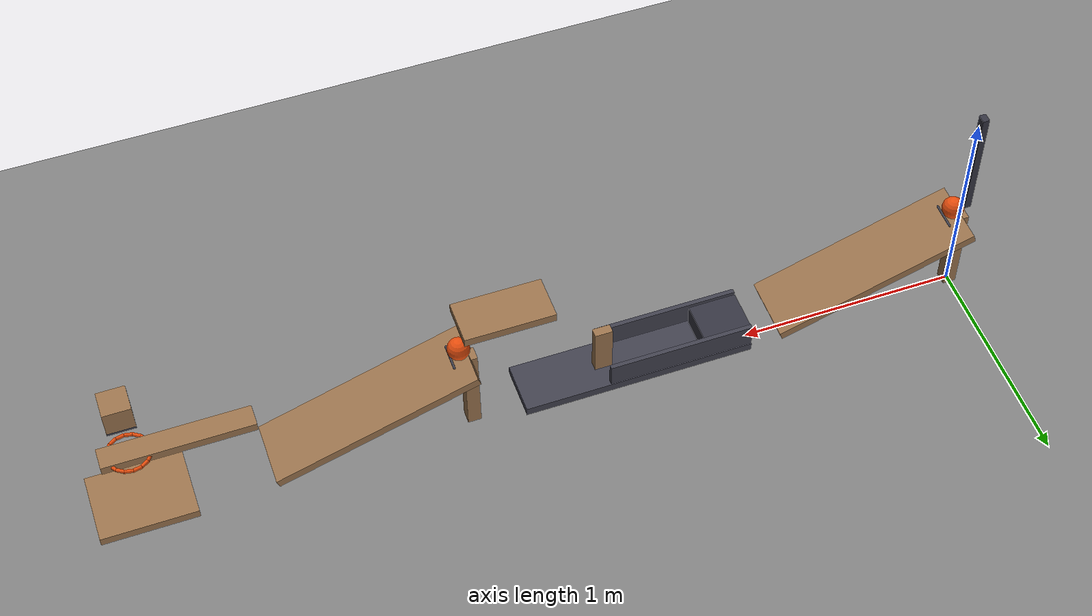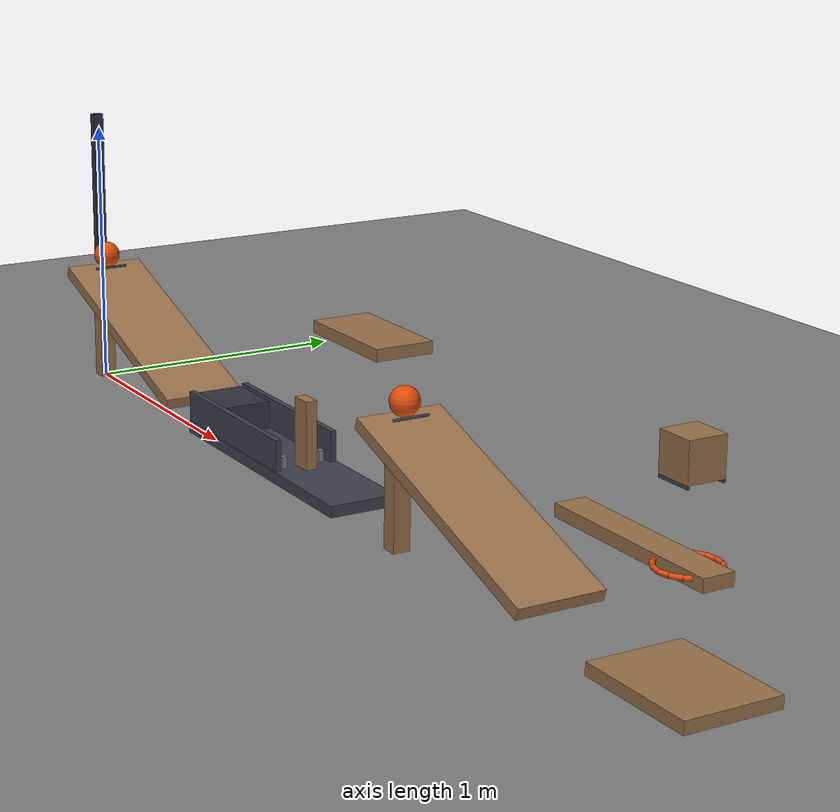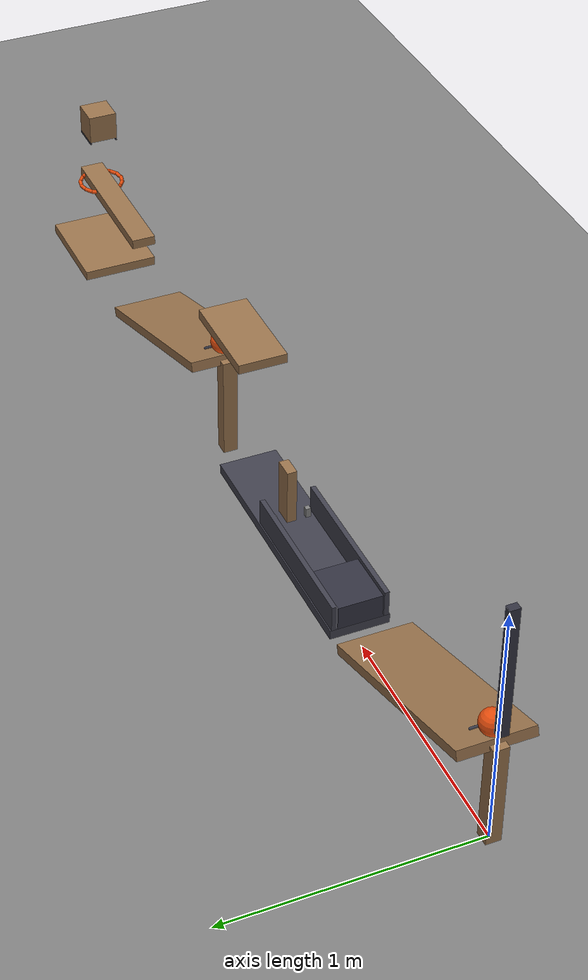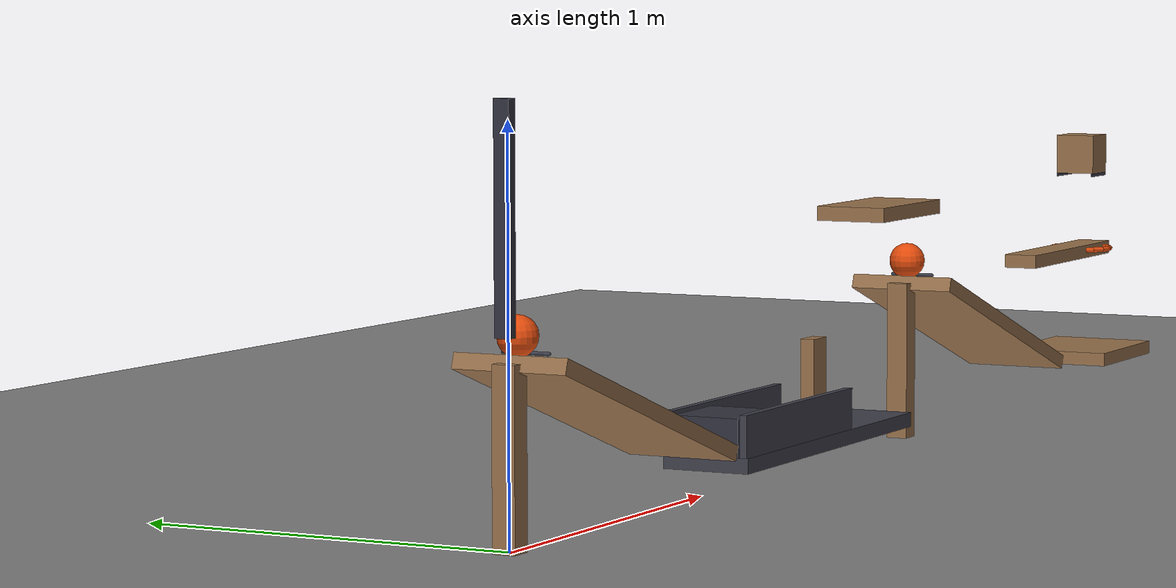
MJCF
<mujoco model="retained_ball_relay_revision">
  <compiler angle="radian"/>
  <option timestep="0.002"/>
  <worldbody>
    <geom name="floor" type="plane" size="8 8 0.1" friction="0.68 0.005 0.002"/>
    <body name="ramp1">
      <geom name="ramp1_deck" type="box" pos="0.449122 0 0.285735" size="0.475 0.15 0.02" euler="0 0.331612 0" friction="0.68 0.005 0.002" solref="0.01 1" rgba="0.6 0.45 0.3 1"/>
      <geom name="ramp1_leg" type="box" pos="0 0 0.22019" size="0.03 0.03 0.22019" friction="0.68 0.005 0.002" solref="0.01 1" rgba="0.6 0.45 0.3 1"/>
    </body>
    <body name="pendulum1" pos="-0.018298 0 1.05006">
      <joint name="pendulum_hinge" type="hinge" pos="0 0 0" axis="0 1 0" limited="true" range="-1.0472 0.959931" damping="0.04"/>
      <geom name="pendulum1" type="box" pos="0 0 -0.275" size="0.015 0.02 0.275" mass="0.4" friction="0.68 0.005 0.002" solref="0.01 1" rgba="0.2 0.2 0.25 1"/>
    </body>
    <body name="ball1" pos="0.0417001 0 0.500054">
      <freejoint/>
      <geom name="ball1" type="sphere" pos="0 0 0" size="0.05" mass="0.2" condim="6" friction="0.68 0.005 0.002" solref="0.01 1" rgba="0.9 0.3 0.05 1"/>
    </body>
    <body name="ball1 retainer">
      <geom name="ball1 retainer" type="capsule" size="0.005" fromto="0.0807001 0.06 0.457054 0.0807001 -0.06 0.457054" friction="0.68 0.005 0.002" solref="0.01 1" rgba="0.25 0.25 0.3 1"/>
    </body>
    <body name="cart track">
      <geom name="cart track" type="box" pos="1.54975 0 0.08" size="0.525 0.12 0.02" friction="0.68 0.005 0.002" solref="0.01 1" rgba="0.25 0.25 0.3 1"/>
    </body>
    <body name="cart left guide">
      <geom name="cart left guide" type="box" pos="1.35475 0.105 0.155" size="0.33 0.01 0.055" friction="0.68 0.005 0.002" solref="0.01 1" rgba="0.25 0.25 0.3 1"/>
    </body>
    <body name="cart right guide">
      <geom name="cart right guide" type="box" pos="1.35475 -0.105 0.155" size="0.33 0.01 0.055" friction="0.68 0.005 0.002" solref="0.01 1" rgba="0.25 0.25 0.3 1"/>
    </body>
    <body name="cart left stop">
      <geom name="cart left stop" type="box" pos="1.65475 0.07 0.12" size="0.01 0.01 0.02" friction="0.68 0.005 0.002" solref="0.01 1"/>
    </body>
    <body name="cart right stop">
      <geom name="cart right stop" type="box" pos="1.65475 -0.07 0.12" size="0.01 0.01 0.02" friction="0.68 0.005 0.002" solref="0.01 1"/>
    </body>
    <body name="cart1" pos="1.13475 0 0.15">
      <freejoint/>
      <geom name="cart1" type="box" pos="0 0 0" size="0.11 0.09 0.05" mass="0.5" friction="0.68 0.005 0.002" solref="0.01 1" rgba="0.2 0.2 0.25 1"/>
    </body>
    <body name="domino1" pos="1.68475 0 0.22">
      <freejoint/>
      <geom name="domino1" type="box" pos="0 0 0" size="0.04 0.02 0.12" mass="0.25" friction="0.68 0.005 0.002" solref="0.01 1" rgba="0.6 0.45 0.3 1"/>
    </body>
    <body name="flap1" pos="1.92475 0 0.658">
      <joint name="flap_hinge" type="hinge" pos="0 0 0" axis="0 1 0" limited="true" range="0.436332 1.5708" damping="0.04"/>
      <geom name="flap1" type="box" pos="0.2 0 0" size="0.2 0.1 0.02" mass="0.3" friction="0.68 0.005 0.002" solref="0.01 1" rgba="0.6 0.45 0.3 1"/>
    </body>
    <body name="ramp2">
      <geom name="ramp2_deck" type="box" pos="2.73388 0 0.285735" size="0.475 0.15 0.02" euler="0 0.331612 0" friction="0.68 0.005 0.002" solref="0.01 1" rgba="0.6 0.45 0.3 1"/>
      <geom name="ramp2_leg" type="box" pos="2.28475 0 0.22019" size="0.03 0.03 0.22019" friction="0.68 0.005 0.002" solref="0.01 1" rgba="0.6 0.45 0.3 1"/>
    </body>
    <body name="ball2" pos="2.32645 0 0.500054">
      <freejoint/>
      <geom name="ball2" type="sphere" pos="0 0 0" size="0.05" mass="0.2" condim="6" friction="0.68 0.005 0.002" solref="0.01 1" rgba="0.9 0.3 0.05 1"/>
    </body>
    <body name="ball2 retainer">
      <geom name="ball2 retainer" type="capsule" size="0.005" fromto="2.36545 0.06 0.457054 2.36545 -0.06 0.457054" friction="0.68 0.005 0.002" solref="0.01 1" rgba="0.25 0.25 0.3 1"/>
    </body>
    <body name="seesaw1" pos="3.53346 0 0.43">
      <joint name="seesaw_hinge" type="hinge" pos="0 0 0" axis="0 1 0" limited="true" range="-1.48353 -0.785398" damping="0.04"/>
      <geom name="seesaw1" type="box" pos="0 0 0" size="0.325 0.05 0.02" mass="0.55" friction="0.68 0.005 0.002" solref="0.01 1" rgba="0.6 0.45 0.3 1"/>
    </body>
    <body name="block left ledge">
      <geom name="block left ledge" type="box" pos="3.73346 0.057 0.668952" size="0.06 0.003 0.005" friction="0.68 0.005 0.002" solref="0.01 1" rgba="0.25 0.25 0.3 1"/>
    </body>
    <body name="block right ledge">
      <geom name="block right ledge" type="box" pos="3.73346 -0.057 0.668952" size="0.06 0.003 0.005" friction="0.68 0.005 0.002" solref="0.01 1" rgba="0.25 0.25 0.3 1"/>
    </body>
    <body name="block1" pos="3.73346 0 0.733952">
      <freejoint/>
      <geom name="block1" type="box" pos="0 0 0" size="0.06 0.06 0.06" mass="0.35" friction="0.68 0.005 0.002" solref="0.01 1" rgba="0.6 0.45 0.3 1"/>
    </body>
    <body name="ring1">
      <geom name="ring1_00" type="capsule" size="0.008" fromto="3.82546 0 0.433952 3.81846 0.0352069 0.433952" friction="0.68 0.005 0.002" solref="0.01 1" rgba="0.9 0.3 0.05 1"/>
      <geom name="ring1_01" type="capsule" size="0.008" fromto="3.81846 0.0352069 0.433952 3.79851 0.0650538 0.433952" friction="0.68 0.005 0.002" solref="0.01 1" rgba="0.9 0.3 0.05 1"/>
      <geom name="ring1_02" type="capsule" size="0.008" fromto="3.79851 0.0650538 0.433952 3.76867 0.0849969 0.433952" friction="0.68 0.005 0.002" solref="0.01 1" rgba="0.9 0.3 0.05 1"/>
      <geom name="ring1_03" type="capsule" size="0.008" fromto="3.76867 0.0849969 0.433952 3.73346 0.092 0.433952" friction="0.68 0.005 0.002" solref="0.01 1" rgba="0.9 0.3 0.05 1"/>
      <geom name="ring1_04" type="capsule" size="0.008" fromto="3.73346 0.092 0.433952 3.69825 0.0849969 0.433952" friction="0.68 0.005 0.002" solref="0.01 1" rgba="0.9 0.3 0.05 1"/>
      <geom name="ring1_05" type="capsule" size="0.008" fromto="3.69825 0.0849969 0.433952 3.66841 0.0650538 0.433952" friction="0.68 0.005 0.002" solref="0.01 1" rgba="0.9 0.3 0.05 1"/>
      <geom name="ring1_06" type="capsule" size="0.008" fromto="3.66841 0.0650538 0.433952 3.64846 0.0352069 0.433952" friction="0.68 0.005 0.002" solref="0.01 1" rgba="0.9 0.3 0.05 1"/>
      <geom name="ring1_07" type="capsule" size="0.008" fromto="3.64846 0.0352069 0.433952 3.64146 1.12668e-17 0.433952" friction="0.68 0.005 0.002" solref="0.01 1" rgba="0.9 0.3 0.05 1"/>
      <geom name="ring1_08" type="capsule" size="0.008" fromto="3.64146 1.12668e-17 0.433952 3.64846 -0.0352069 0.433952" friction="0.68 0.005 0.002" solref="0.01 1" rgba="0.9 0.3 0.05 1"/>
      <geom name="ring1_09" type="capsule" size="0.008" fromto="3.64846 -0.0352069 0.433952 3.66841 -0.0650538 0.433952" friction="0.68 0.005 0.002" solref="0.01 1" rgba="0.9 0.3 0.05 1"/>
      <geom name="ring1_10" type="capsule" size="0.008" fromto="3.66841 -0.0650538 0.433952 3.69825 -0.0849969 0.433952" friction="0.68 0.005 0.002" solref="0.01 1" rgba="0.9 0.3 0.05 1"/>
      <geom name="ring1_11" type="capsule" size="0.008" fromto="3.69825 -0.0849969 0.433952 3.73346 -0.092 0.433952" friction="0.68 0.005 0.002" solref="0.01 1" rgba="0.9 0.3 0.05 1"/>
      <geom name="ring1_12" type="capsule" size="0.008" fromto="3.73346 -0.092 0.433952 3.76867 -0.0849969 0.433952" friction="0.68 0.005 0.002" solref="0.01 1" rgba="0.9 0.3 0.05 1"/>
      <geom name="ring1_13" type="capsule" size="0.008" fromto="3.76867 -0.0849969 0.433952 3.79851 -0.0650538 0.433952" friction="0.68 0.005 0.002" solref="0.01 1" rgba="0.9 0.3 0.05 1"/>
      <geom name="ring1_14" type="capsule" size="0.008" fromto="3.79851 -0.0650538 0.433952 3.81846 -0.0352069 0.433952" friction="0.68 0.005 0.002" solref="0.01 1" rgba="0.9 0.3 0.05 1"/>
      <geom name="ring1_15" type="capsule" size="0.008" fromto="3.81846 -0.0352069 0.433952 3.82546 -2.25335e-17 0.433952" friction="0.68 0.005 0.002" solref="0.01 1" rgba="0.9 0.3 0.05 1"/>
    </body>
    <body name="door1" pos="3.52346 0 0.103952">
      <joint name="door_hinge" type="hinge" pos="0 0 0" axis="0 1 0" limited="true" range="0 0.174533" stiffness="1" springref="-1.0472" damping="0.04"/>
      <geom name="door1" type="box" pos="0.21 0 0" size="0.21 0.16 0.02" mass="0.45" friction="0.68 0.005 0.002" solref="0.01 1" rgba="0.6 0.45 0.3 1"/>
    </body>
  </worldbody>
  <keyframe>
    <key name="start" qpos="0.959931 0.0417001 0 0.500054 1 0 0 0 1.13475 0 0.15 1 0 0 0 1.68475 0 0.22 1 0 0 0 1.5708 2.32645 0 0.500054 1 0 0 0 -0.785398 3.73346 0 0.733952 1 0 0 0 0" qvel="0 0 0 0 0 0 0 0 0 0 0 0 0 0 0 0 0 0 0 0 0 0 0 0 0 0 0 0 0 0 0 0 0 0"/>
  </keyframe>
</mujoco>
